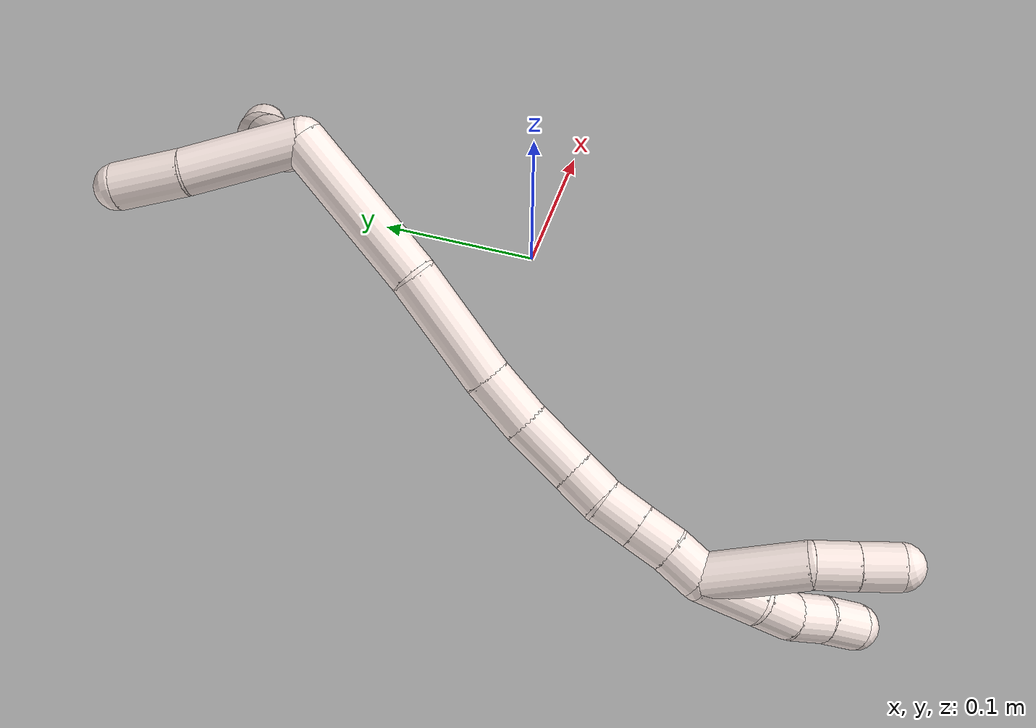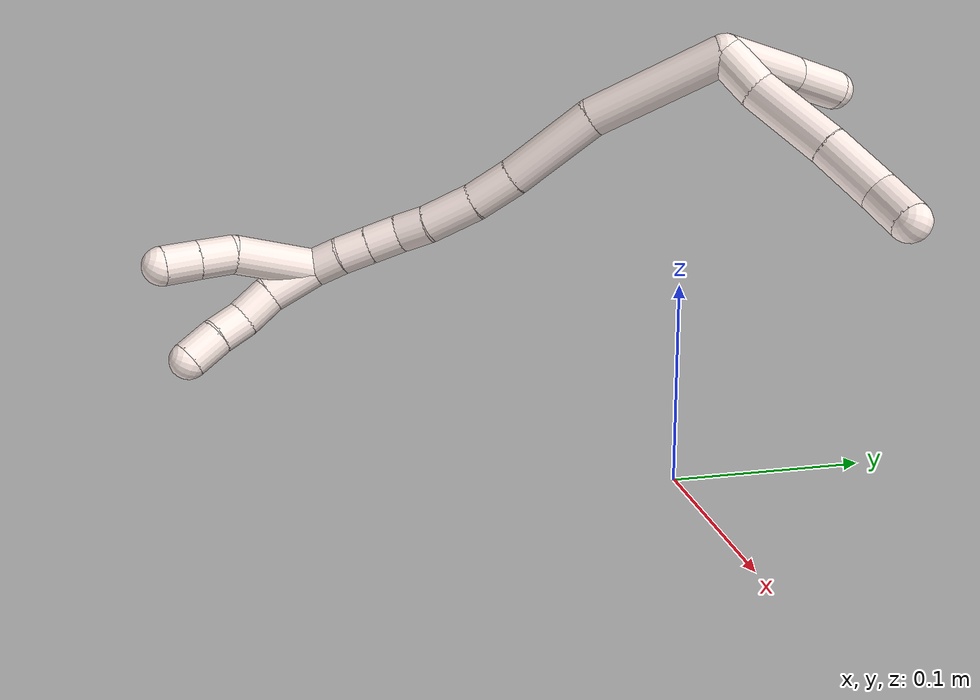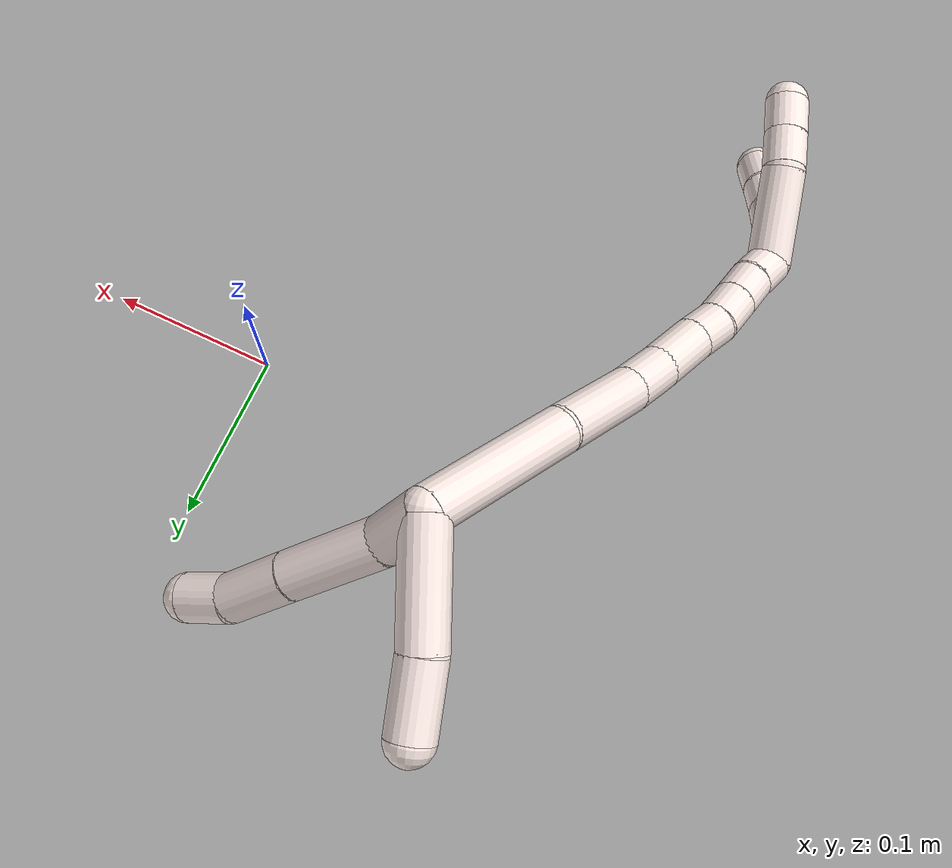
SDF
<sdf version="1.7">
 <world name="default">
  <model name="11">
   <static>0</static>
   <link name="11">
    <collision name="collision-cylinder-e_1_2_8">
     <pose>-0.003775 0.01067 0.00944 -0.846512 -0.259036 0.117214</pose>
     <geometry><cylinder><radius>0.0125</radius><length>0.029477</length></cylinder></geometry>
     <surface>
      <friction><ode><mu>1.16</mu><mu2>1.16</mu2><slip1>0</slip1><slip2>0</slip2></ode></friction>
      <contact><ode><kp>1e+06</kp><kd>1</kd><max_vel>0</max_vel><min_depth>0.001</min_depth></ode></contact>
     </surface>
    </collision>
    <visual name="visual-cylinder-e_1_2_8">
     <pose>-0.003775 0.01067 0.00944 -0.846512 -0.259036 0.117214</pose>
     <geometry><cylinder><radius>0.0125</radius><length>0.029477</length></cylinder></geometry>
     <material><ambient>1 0.933333 0.909804 1</ambient></material>
    </visual>
    <collision name="collision-cylinder-e_2_8_9">
     <pose>-0.010121 0.044797 0.032765 -1.03632 -0.094026 0.053633</pose>
     <geometry><cylinder><radius>0.0125</radius><length>0.054758</length></cylinder></geometry>
     <surface>
      <friction><ode><mu>1.16</mu><mu2>1.16</mu2><slip1>0</slip1><slip2>0</slip2></ode></friction>
      <contact><ode><kp>1e+06</kp><kd>1</kd><max_vel>0</max_vel><min_depth>0.001</min_depth></ode></contact>
     </surface>
    </collision>
    <visual name="visual-cylinder-e_2_8_9">
     <pose>-0.010121 0.044797 0.032765 -1.03632 -0.094026 0.053633</pose>
     <geometry><cylinder><radius>0.0125</radius><length>0.054758</length></cylinder></geometry>
     <material><ambient>1 0.933333 0.909804 1</ambient></material>
    </visual>
    <collision name="collision-cylinder-e_3_9_10">
     <pose>-0.015718 0.085022 0.056685 -1.03148 -0.153634 0.087214</pose>
     <geometry><cylinder><radius>0.0125</radius><length>0.03955</length></cylinder></geometry>
     <surface>
      <friction><ode><mu>1.16</mu><mu2>1.16</mu2><slip1>0</slip1><slip2>0</slip2></ode></friction>
      <contact><ode><kp>1e+06</kp><kd>1</kd><max_vel>0</max_vel><min_depth>0.001</min_depth></ode></contact>
     </surface>
    </collision>
    <visual name="visual-cylinder-e_3_9_10">
     <pose>-0.015718 0.085022 0.056685 -1.03148 -0.153634 0.087214</pose>
     <geometry><cylinder><radius>0.0125</radius><length>0.03955</length></cylinder></geometry>
     <material><ambient>1 0.933333 0.909804 1</ambient></material>
    </visual>
    <collision name="collision-cylinder-e_4_10_6">
     <pose>-0.020357 0.114433 0.069784 -1.33313 -0.12336 0.097092</pose>
     <geometry><cylinder><radius>0.0125</radius><length>0.026216</length></cylinder></geometry>
     <surface>
      <friction><ode><mu>1.16</mu><mu2>1.16</mu2><slip1>0</slip1><slip2>0</slip2></ode></friction>
      <contact><ode><kp>1e+06</kp><kd>1</kd><max_vel>0</max_vel><min_depth>0.001</min_depth></ode></contact>
     </surface>
    </collision>
    <visual name="visual-cylinder-e_4_10_6">
     <pose>-0.020357 0.114433 0.069784 -1.33313 -0.12336 0.097092</pose>
     <geometry><cylinder><radius>0.0125</radius><length>0.026216</length></cylinder></geometry>
     <material><ambient>1 0.933333 0.909804 1</ambient></material>
    </visual>
    <collision name="collision-cylinder-e_1_2_11">
     <pose>0.00325 -0.005432 0.030406 0.176792 0.104827 0.009299</pose>
     <geometry><cylinder><radius>0.0125</radius><length>0.062115</length></cylinder></geometry>
     <surface>
      <friction><ode><mu>1.16</mu><mu2>1.16</mu2><slip1>0</slip1><slip2>0</slip2></ode></friction>
      <contact><ode><kp>1e+06</kp><kd>1</kd><max_vel>0</max_vel><min_depth>0.001</min_depth></ode></contact>
     </surface>
    </collision>
    <visual name="visual-cylinder-e_1_2_11">
     <pose>0.00325 -0.005432 0.030406 0.176792 0.104827 0.009299</pose>
     <geometry><cylinder><radius>0.0125</radius><length>0.062115</length></cylinder></geometry>
     <material><ambient>1 0.933333 0.909804 1</ambient></material>
    </visual>
    <collision name="collision-cylinder-e_2_11_5">
     <pose>0.008648 -0.011725 0.079612 0.045724 0.113664 0.002602</pose>
     <geometry><cylinder><radius>0.0125</radius><length>0.037885</length></cylinder></geometry>
     <surface>
      <friction><ode><mu>1.16</mu><mu2>1.16</mu2><slip1>0</slip1><slip2>0</slip2></ode></friction>
      <contact><ode><kp>1e+06</kp><kd>1</kd><max_vel>0</max_vel><min_depth>0.001</min_depth></ode></contact>
     </surface>
    </collision>
    <visual name="visual-cylinder-e_2_11_5">
     <pose>0.008648 -0.011725 0.079612 0.045724 0.113664 0.002602</pose>
     <geometry><cylinder><radius>0.0125</radius><length>0.037885</length></cylinder></geometry>
     <material><ambient>1 0.933333 0.909804 1</ambient></material>
    </visual>
    <collision name="collision-cylinder-e_1_2_12">
     <pose>-0.037084 -0.01619 -0.018744 2.42918 -0.981945 -1.9256</pose>
     <geometry><cylinder><radius>0.0125</radius><length>0.08919</length></cylinder></geometry>
     <surface>
      <friction><ode><mu>1.16</mu><mu2>1.16</mu2><slip1>0</slip1><slip2>0</slip2></ode></friction>
      <contact><ode><kp>1e+06</kp><kd>1</kd><max_vel>0</max_vel><min_depth>0.001</min_depth></ode></contact>
     </surface>
    </collision>
    <visual name="visual-cylinder-e_1_2_12">
     <pose>-0.037084 -0.01619 -0.018744 2.42918 -0.981945 -1.9256</pose>
     <geometry><cylinder><radius>0.0125</radius><length>0.08919</length></cylinder></geometry>
     <material><ambient>1 0.933333 0.909804 1</ambient></material>
    </visual>
    <collision name="collision-cylinder-e_2_12_13">
     <pose>-0.103249 -0.039316 -0.047103 2.51665 -1.18371 -2.24565</pose>
     <geometry><cylinder><radius>0.0125</radius><length>0.062808</length></cylinder></geometry>
     <surface>
      <friction><ode><mu>1.16</mu><mu2>1.16</mu2><slip1>0</slip1><slip2>0</slip2></ode></friction>
      <contact><ode><kp>1e+06</kp><kd>1</kd><max_vel>0</max_vel><min_depth>0.001</min_depth></ode></contact>
     </surface>
    </collision>
    <visual name="visual-cylinder-e_2_12_13">
     <pose>-0.103249 -0.039316 -0.047103 2.51665 -1.18371 -2.24565</pose>
     <geometry><cylinder><radius>0.0125</radius><length>0.062808</length></cylinder></geometry>
     <material><ambient>1 0.933333 0.909804 1</ambient></material>
    </visual>
    <collision name="collision-cylinder-e_3_13_14">
     <pose>-0.145971 -0.049743 -0.062636 2.60863 -1.10414 -2.30727</pose>
     <geometry><cylinder><radius>0.0125</radius><length>0.030547</length></cylinder></geometry>
     <surface>
      <friction><ode><mu>1.16</mu><mu2>1.16</mu2><slip1>0</slip1><slip2>0</slip2></ode></friction>
      <contact><ode><kp>1e+06</kp><kd>1</kd><max_vel>0</max_vel><min_depth>0.001</min_depth></ode></contact>
     </surface>
    </collision>
    <visual name="visual-cylinder-e_3_13_14">
     <pose>-0.145971 -0.049743 -0.062636 2.60863 -1.10414 -2.30727</pose>
     <geometry><cylinder><radius>0.0125</radius><length>0.030547</length></cylinder></geometry>
     <material><ambient>1 0.933333 0.909804 1</ambient></material>
    </visual>
    <collision name="collision-cylinder-e_4_14_15">
     <pose>-0.173889 -0.05795 -0.076812 2.6227 -0.983227 -2.22119</pose>
     <geometry><cylinder><radius>0.0125</radius><length>0.03431</length></cylinder></geometry>
     <surface>
      <friction><ode><mu>1.16</mu><mu2>1.16</mu2><slip1>0</slip1><slip2>0</slip2></ode></friction>
      <contact><ode><kp>1e+06</kp><kd>1</kd><max_vel>0</max_vel><min_depth>0.001</min_depth></ode></contact>
     </surface>
    </collision>
    <visual name="visual-cylinder-e_4_14_15">
     <pose>-0.173889 -0.05795 -0.076812 2.6227 -0.983227 -2.22119</pose>
     <geometry><cylinder><radius>0.0125</radius><length>0.03431</length></cylinder></geometry>
     <material><ambient>1 0.933333 0.909804 1</ambient></material>
    </visual>
    <collision name="collision-cylinder-e_5_15_16">
     <pose>-0.196011 -0.066638 -0.090345 2.49618 -0.871108 -1.89543</pose>
     <geometry><cylinder><radius>0.0125</radius><length>0.020504</length></cylinder></geometry>
     <surface>
      <friction><ode><mu>1.16</mu><mu2>1.16</mu2><slip1>0</slip1><slip2>0</slip2></ode></friction>
      <contact><ode><kp>1e+06</kp><kd>1</kd><max_vel>0</max_vel><min_depth>0.001</min_depth></ode></contact>
     </surface>
    </collision>
    <visual name="visual-cylinder-e_5_15_16">
     <pose>-0.196011 -0.066638 -0.090345 2.49618 -0.871108 -1.89543</pose>
     <geometry><cylinder><radius>0.0125</radius><length>0.020504</length></cylinder></geometry>
     <material><ambient>1 0.933333 0.909804 1</ambient></material>
    </visual>
    <collision name="collision-cylinder-e_6_16_17">
     <pose>-0.21204 -0.072918 -0.102153 2.80187 -0.868323 -2.433</pose>
     <geometry><cylinder><radius>0.0125</radius><length>0.021451</length></cylinder></geometry>
     <surface>
      <friction><ode><mu>1.16</mu><mu2>1.16</mu2><slip1>0</slip1><slip2>0</slip2></ode></friction>
      <contact><ode><kp>1e+06</kp><kd>1</kd><max_vel>0</max_vel><min_depth>0.001</min_depth></ode></contact>
     </surface>
    </collision>
    <visual name="visual-cylinder-e_6_16_17">
     <pose>-0.21204 -0.072918 -0.102153 2.80187 -0.868323 -2.433</pose>
     <geometry><cylinder><radius>0.0125</radius><length>0.021451</length></cylinder></geometry>
     <material><ambient>1 0.933333 0.909804 1</ambient></material>
    </visual>
    <collision name="collision-cylinder-e_7_17_18">
     <pose>-0.227938 -0.077316 -0.114965 2.82043 -0.861673 -2.46396</pose>
     <geometry><cylinder><radius>0.0125</radius><length>0.020323</length></cylinder></geometry>
     <surface>
      <friction><ode><mu>1.16</mu><mu2>1.16</mu2><slip1>0</slip1><slip2>0</slip2></ode></friction>
      <contact><ode><kp>1e+06</kp><kd>1</kd><max_vel>0</max_vel><min_depth>0.001</min_depth></ode></contact>
     </surface>
    </collision>
    <visual name="visual-cylinder-e_7_17_18">
     <pose>-0.227938 -0.077316 -0.114965 2.82043 -0.861673 -2.46396</pose>
     <geometry><cylinder><radius>0.0125</radius><length>0.020323</length></cylinder></geometry>
     <material><ambient>1 0.933333 0.909804 1</ambient></material>
    </visual>
    <collision name="collision-cylinder-e_8_18_1">
     <pose>-0.244142 -0.082028 -0.126707 2.69395 -0.950984 -2.30905</pose>
     <geometry><cylinder><radius>0.0125</radius><length>0.020866</length></cylinder></geometry>
     <surface>
      <friction><ode><mu>1.16</mu><mu2>1.16</mu2><slip1>0</slip1><slip2>0</slip2></ode></friction>
      <contact><ode><kp>1e+06</kp><kd>1</kd><max_vel>0</max_vel><min_depth>0.001</min_depth></ode></contact>
     </surface>
    </collision>
    <visual name="visual-cylinder-e_8_18_1">
     <pose>-0.244142 -0.082028 -0.126707 2.69395 -0.950984 -2.30905</pose>
     <geometry><cylinder><radius>0.0125</radius><length>0.020866</length></cylinder></geometry>
     <material><ambient>1 0.933333 0.909804 1</ambient></material>
    </visual>
    <collision name="collision-cylinder-e_1_1_19">
     <pose>-0.265371 -0.08225 -0.142808 -2.91957 -0.86268 2.66635</pose>
     <geometry><cylinder><radius>0.0125</radius><length>0.033535</length></cylinder></geometry>
     <surface>
      <friction><ode><mu>1.16</mu><mu2>1.16</mu2><slip1>0</slip1><slip2>0</slip2></ode></friction>
      <contact><ode><kp>1e+06</kp><kd>1</kd><max_vel>0</max_vel><min_depth>0.001</min_depth></ode></contact>
     </surface>
    </collision>
    <visual name="visual-cylinder-e_1_1_19">
     <pose>-0.265371 -0.08225 -0.142808 -2.91957 -0.86268 2.66635</pose>
     <geometry><cylinder><radius>0.0125</radius><length>0.033535</length></cylinder></geometry>
     <material><ambient>1 0.933333 0.909804 1</ambient></material>
    </visual>
    <collision name="collision-cylinder-e_2_19_20">
     <pose>-0.287493 -0.076178 -0.159191 -2.57305 -0.942555 2.10034</pose>
     <geometry><cylinder><radius>0.0125</radius><length>0.0232</length></cylinder></geometry>
     <surface>
      <friction><ode><mu>1.16</mu><mu2>1.16</mu2><slip1>0</slip1><slip2>0</slip2></ode></friction>
      <contact><ode><kp>1e+06</kp><kd>1</kd><max_vel>0</max_vel><min_depth>0.001</min_depth></ode></contact>
     </surface>
    </collision>
    <visual name="visual-cylinder-e_2_19_20">
     <pose>-0.287493 -0.076178 -0.159191 -2.57305 -0.942555 2.10034</pose>
     <geometry><cylinder><radius>0.0125</radius><length>0.0232</length></cylinder></geometry>
     <material><ambient>1 0.933333 0.909804 1</ambient></material>
    </visual>
    <collision name="collision-cylinder-e_3_20_21">
     <pose>-0.303237 -0.068337 -0.17173 -2.5911 -0.673377 1.78377</pose>
     <geometry><cylinder><radius>0.0125</radius><length>0.020395</length></cylinder></geometry>
     <surface>
      <friction><ode><mu>1.16</mu><mu2>1.16</mu2><slip1>0</slip1><slip2>0</slip2></ode></friction>
      <contact><ode><kp>1e+06</kp><kd>1</kd><max_vel>0</max_vel><min_depth>0.001</min_depth></ode></contact>
     </surface>
    </collision>
    <visual name="visual-cylinder-e_3_20_21">
     <pose>-0.303237 -0.068337 -0.17173 -2.5911 -0.673377 1.78377</pose>
     <geometry><cylinder><radius>0.0125</radius><length>0.020395</length></cylinder></geometry>
     <material><ambient>1 0.933333 0.909804 1</ambient></material>
    </visual>
    <collision name="collision-cylinder-e_4_21_4">
     <pose>-0.317746 -0.05951 -0.185055 -2.52214 -0.793256 1.83666</pose>
     <geometry><cylinder><radius>0.0125</radius><length>0.022869</length></cylinder></geometry>
     <surface>
      <friction><ode><mu>1.16</mu><mu2>1.16</mu2><slip1>0</slip1><slip2>0</slip2></ode></friction>
      <contact><ode><kp>1e+06</kp><kd>1</kd><max_vel>0</max_vel><min_depth>0.001</min_depth></ode></contact>
     </surface>
    </collision>
    <visual name="visual-cylinder-e_4_21_4">
     <pose>-0.317746 -0.05951 -0.185055 -2.52214 -0.793256 1.83666</pose>
     <geometry><cylinder><radius>0.0125</radius><length>0.022869</length></cylinder></geometry>
     <material><ambient>1 0.933333 0.909804 1</ambient></material>
    </visual>
    <collision name="collision-cylinder-e_1_1_22">
     <pose>-0.256252 -0.083981 -0.15931 -3.1169 -0.132466 2.77346</pose>
     <geometry><cylinder><radius>0.0125</radius><length>0.054777</length></cylinder></geometry>
     <surface>
      <friction><ode><mu>1.16</mu><mu2>1.16</mu2><slip1>0</slip1><slip2>0</slip2></ode></friction>
      <contact><ode><kp>1e+06</kp><kd>1</kd><max_vel>0</max_vel><min_depth>0.001</min_depth></ode></contact>
     </surface>
    </collision>
    <visual name="visual-cylinder-e_1_1_22">
     <pose>-0.256252 -0.083981 -0.15931 -3.1169 -0.132466 2.77346</pose>
     <geometry><cylinder><radius>0.0125</radius><length>0.054777</length></cylinder></geometry>
     <material><ambient>1 0.933333 0.909804 1</ambient></material>
    </visual>
    <collision name="collision-cylinder-e_2_22_23">
     <pose>-0.264553 -0.081423 -0.196747 -2.96032 -0.420652 2.33663</pose>
     <geometry><cylinder><radius>0.0125</radius><length>0.022937</length></cylinder></geometry>
     <surface>
      <friction><ode><mu>1.16</mu><mu2>1.16</mu2><slip1>0</slip1><slip2>0</slip2></ode></friction>
      <contact><ode><kp>1e+06</kp><kd>1</kd><max_vel>0</max_vel><min_depth>0.001</min_depth></ode></contact>
     </surface>
    </collision>
    <visual name="visual-cylinder-e_2_22_23">
     <pose>-0.264553 -0.081423 -0.196747 -2.96032 -0.420652 2.33663</pose>
     <geometry><cylinder><radius>0.0125</radius><length>0.022937</length></cylinder></geometry>
     <material><ambient>1 0.933333 0.909804 1</ambient></material>
    </visual>
    <collision name="collision-cylinder-e_3_23_3">
     <pose>-0.273735 -0.077465 -0.217026 -2.93702 -0.415651 2.23558</pose>
     <geometry><cylinder><radius>0.0125</radius><length>0.022286</length></cylinder></geometry>
     <surface>
      <friction><ode><mu>1.16</mu><mu2>1.16</mu2><slip1>0</slip1><slip2>0</slip2></ode></friction>
      <contact><ode><kp>1e+06</kp><kd>1</kd><max_vel>0</max_vel><min_depth>0.001</min_depth></ode></contact>
     </surface>
    </collision>
    <visual name="visual-cylinder-e_3_23_3">
     <pose>-0.273735 -0.077465 -0.217026 -2.93702 -0.415651 2.23558</pose>
     <geometry><cylinder><radius>0.0125</radius><length>0.022286</length></cylinder></geometry>
     <material><ambient>1 0.933333 0.909804 1</ambient></material>
    </visual>
    <collision name="collision-sphere-3">
     <pose>-0.278235 -0.075394 -0.227008 0 -0 0</pose>
     <geometry><sphere><radius>0.0125</radius></sphere></geometry>
     <surface>
      <friction><ode><mu>1.16</mu><mu2>1.16</mu2><slip1>0</slip1><slip2>0</slip2></ode></friction>
      <contact><ode><kp>1e+06</kp><kd>1</kd><max_vel>0</max_vel><min_depth>0.001</min_depth></ode></contact>
     </surface>
    </collision>
    <visual name="visual-sphere-3">
     <pose>-0.278235 -0.075394 -0.227008 0 -0 0</pose>
     <geometry><sphere><radius>0.0125</radius></sphere></geometry>
     <material><ambient>1 0.933333 0.909804 1</ambient></material>
    </visual>
    <collision name="collision-sphere-23">
     <pose>-0.269236 -0.079536 -0.207044 0 -0 0</pose>
     <geometry><sphere><radius>0.0125</radius></sphere></geometry>
     <surface>
      <friction><ode><mu>1.16</mu><mu2>1.16</mu2><slip1>0</slip1><slip2>0</slip2></ode></friction>
      <contact><ode><kp>1e+06</kp><kd>1</kd><max_vel>0</max_vel><min_depth>0.001</min_depth></ode></contact>
     </surface>
    </collision>
    <visual name="visual-sphere-23">
     <pose>-0.269236 -0.079536 -0.207044 0 -0 0</pose>
     <geometry><sphere><radius>0.0125</radius></sphere></geometry>
     <material><ambient>1 0.933333 0.909804 1</ambient></material>
    </visual>
    <collision name="collision-sphere-22">
     <pose>-0.259869 -0.083311 -0.18645 0 -0 0</pose>
     <geometry><sphere><radius>0.0125</radius></sphere></geometry>
     <surface>
      <friction><ode><mu>1.16</mu><mu2>1.16</mu2><slip1>0</slip1><slip2>0</slip2></ode></friction>
      <contact><ode><kp>1e+06</kp><kd>1</kd><max_vel>0</max_vel><min_depth>0.001</min_depth></ode></contact>
     </surface>
    </collision>
    <visual name="visual-sphere-22">
     <pose>-0.259869 -0.083311 -0.18645 0 -0 0</pose>
     <geometry><sphere><radius>0.0125</radius></sphere></geometry>
     <material><ambient>1 0.933333 0.909804 1</ambient></material>
    </visual>
    <collision name="collision-sphere-4">
     <pose>-0.325894 -0.054852 -0.191587 0 -0 0</pose>
     <geometry><sphere><radius>0.0125</radius></sphere></geometry>
     <surface>
      <friction><ode><mu>1.16</mu><mu2>1.16</mu2><slip1>0</slip1><slip2>0</slip2></ode></friction>
      <contact><ode><kp>1e+06</kp><kd>1</kd><max_vel>0</max_vel><min_depth>0.001</min_depth></ode></contact>
     </surface>
    </collision>
    <visual name="visual-sphere-4">
     <pose>-0.325894 -0.054852 -0.191587 0 -0 0</pose>
     <geometry><sphere><radius>0.0125</radius></sphere></geometry>
     <material><ambient>1 0.933333 0.909804 1</ambient></material>
    </visual>
    <collision name="collision-sphere-21">
     <pose>-0.309597 -0.064167 -0.178524 0 -0 0</pose>
     <geometry><sphere><radius>0.0125</radius></sphere></geometry>
     <surface>
      <friction><ode><mu>1.16</mu><mu2>1.16</mu2><slip1>0</slip1><slip2>0</slip2></ode></friction>
      <contact><ode><kp>1e+06</kp><kd>1</kd><max_vel>0</max_vel><min_depth>0.001</min_depth></ode></contact>
     </surface>
    </collision>
    <visual name="visual-sphere-21">
     <pose>-0.309597 -0.064167 -0.178524 0 -0 0</pose>
     <geometry><sphere><radius>0.0125</radius></sphere></geometry>
     <material><ambient>1 0.933333 0.909804 1</ambient></material>
    </visual>
    <collision name="collision-sphere-20">
     <pose>-0.296878 -0.072507 -0.164936 0 -0 0</pose>
     <geometry><sphere><radius>0.0125</radius></sphere></geometry>
     <surface>
      <friction><ode><mu>1.16</mu><mu2>1.16</mu2><slip1>0</slip1><slip2>0</slip2></ode></friction>
      <contact><ode><kp>1e+06</kp><kd>1</kd><max_vel>0</max_vel><min_depth>0.001</min_depth></ode></contact>
     </surface>
    </collision>
    <visual name="visual-sphere-20">
     <pose>-0.296878 -0.072507 -0.164936 0 -0 0</pose>
     <geometry><sphere><radius>0.0125</radius></sphere></geometry>
     <material><ambient>1 0.933333 0.909804 1</ambient></material>
    </visual>
    <collision name="collision-sphere-11">
     <pose>0.006499 -0.010864 0.060811 0 -0 0</pose>
     <geometry><sphere><radius>0.0125</radius></sphere></geometry>
     <surface>
      <friction><ode><mu>1.16</mu><mu2>1.16</mu2><slip1>0</slip1><slip2>0</slip2></ode></friction>
      <contact><ode><kp>1e+06</kp><kd>1</kd><max_vel>0</max_vel><min_depth>0.001</min_depth></ode></contact>
     </surface>
    </collision>
    <visual name="visual-sphere-11">
     <pose>0.006499 -0.010864 0.060811 0 -0 0</pose>
     <geometry><sphere><radius>0.0125</radius></sphere></geometry>
     <material><ambient>1 0.933333 0.909804 1</ambient></material>
    </visual>
    <collision name="collision-sphere-6">
     <pose>-0.02197 0.127075 0.072846 0 -0 0</pose>
     <geometry><sphere><radius>0.0125</radius></sphere></geometry>
     <surface>
      <friction><ode><mu>1.16</mu><mu2>1.16</mu2><slip1>0</slip1><slip2>0</slip2></ode></friction>
      <contact><ode><kp>1e+06</kp><kd>1</kd><max_vel>0</max_vel><min_depth>0.001</min_depth></ode></contact>
     </surface>
    </collision>
    <visual name="visual-sphere-6">
     <pose>-0.02197 0.127075 0.072846 0 -0 0</pose>
     <geometry><sphere><radius>0.0125</radius></sphere></geometry>
     <material><ambient>1 0.933333 0.909804 1</ambient></material>
    </visual>
    <collision name="collision-sphere-10">
     <pose>-0.018744 0.10179 0.066721 0 -0 0</pose>
     <geometry><sphere><radius>0.0125</radius></sphere></geometry>
     <surface>
      <friction><ode><mu>1.16</mu><mu2>1.16</mu2><slip1>0</slip1><slip2>0</slip2></ode></friction>
      <contact><ode><kp>1e+06</kp><kd>1</kd><max_vel>0</max_vel><min_depth>0.001</min_depth></ode></contact>
     </surface>
    </collision>
    <visual name="visual-sphere-10">
     <pose>-0.018744 0.10179 0.066721 0 -0 0</pose>
     <geometry><sphere><radius>0.0125</radius></sphere></geometry>
     <material><ambient>1 0.933333 0.909804 1</ambient></material>
    </visual>
    <collision name="collision-sphere-9">
     <pose>-0.012692 0.068254 0.04665 0 -0 0</pose>
     <geometry><sphere><radius>0.0125</radius></sphere></geometry>
     <surface>
      <friction><ode><mu>1.16</mu><mu2>1.16</mu2><slip1>0</slip1><slip2>0</slip2></ode></friction>
      <contact><ode><kp>1e+06</kp><kd>1</kd><max_vel>0</max_vel><min_depth>0.001</min_depth></ode></contact>
     </surface>
    </collision>
    <visual name="visual-sphere-9">
     <pose>-0.012692 0.068254 0.04665 0 -0 0</pose>
     <geometry><sphere><radius>0.0125</radius></sphere></geometry>
     <material><ambient>1 0.933333 0.909804 1</ambient></material>
    </visual>
    <collision name="collision-sphere-2">
     <geometry><sphere><radius>0.0125</radius></sphere></geometry>
     <surface>
      <friction><ode><mu>1.16</mu><mu2>1.16</mu2><slip1>0</slip1><slip2>0</slip2></ode></friction>
      <contact><ode><kp>1e+06</kp><kd>1</kd><max_vel>0</max_vel><min_depth>0.001</min_depth></ode></contact>
     </surface>
    </collision>
    <visual name="visual-sphere-2">
     <geometry><sphere><radius>0.0125</radius></sphere></geometry>
     <material><ambient>1 0.933333 0.909804 1</ambient></material>
    </visual>
    <collision name="collision-sphere-19">
     <pose>-0.278108 -0.079848 -0.153446 0 -0 0</pose>
     <geometry><sphere><radius>0.0125</radius></sphere></geometry>
     <surface>
      <friction><ode><mu>1.16</mu><mu2>1.16</mu2><slip1>0</slip1><slip2>0</slip2></ode></friction>
      <contact><ode><kp>1e+06</kp><kd>1</kd><max_vel>0</max_vel><min_depth>0.001</min_depth></ode></contact>
     </surface>
    </collision>
    <visual name="visual-sphere-19">
     <pose>-0.278108 -0.079848 -0.153446 0 -0 0</pose>
     <geometry><sphere><radius>0.0125</radius></sphere></geometry>
     <material><ambient>1 0.933333 0.909804 1</ambient></material>
    </visual>
    <collision name="collision-sphere-8">
     <pose>-0.00755 0.021341 0.01888 0 -0 0</pose>
     <geometry><sphere><radius>0.0125</radius></sphere></geometry>
     <surface>
      <friction><ode><mu>1.16</mu><mu2>1.16</mu2><slip1>0</slip1><slip2>0</slip2></ode></friction>
      <contact><ode><kp>1e+06</kp><kd>1</kd><max_vel>0</max_vel><min_depth>0.001</min_depth></ode></contact>
     </surface>
    </collision>
    <visual name="visual-sphere-8">
     <pose>-0.00755 0.021341 0.01888 0 -0 0</pose>
     <geometry><sphere><radius>0.0125</radius></sphere></geometry>
     <material><ambient>1 0.933333 0.909804 1</ambient></material>
    </visual>
    <collision name="collision-sphere-5">
     <pose>0.010796 -0.012585 0.098412 0 -0 0</pose>
     <geometry><sphere><radius>0.0125</radius></sphere></geometry>
     <surface>
      <friction><ode><mu>1.16</mu><mu2>1.16</mu2><slip1>0</slip1><slip2>0</slip2></ode></friction>
      <contact><ode><kp>1e+06</kp><kd>1</kd><max_vel>0</max_vel><min_depth>0.001</min_depth></ode></contact>
     </surface>
    </collision>
    <visual name="visual-sphere-5">
     <pose>0.010796 -0.012585 0.098412 0 -0 0</pose>
     <geometry><sphere><radius>0.0125</radius></sphere></geometry>
     <material><ambient>1 0.933333 0.909804 1</ambient></material>
    </visual>
    <collision name="collision-sphere-12">
     <pose>-0.074169 -0.03238 -0.037489 0 -0 0</pose>
     <geometry><sphere><radius>0.0125</radius></sphere></geometry>
     <surface>
      <friction><ode><mu>1.16</mu><mu2>1.16</mu2><slip1>0</slip1><slip2>0</slip2></ode></friction>
      <contact><ode><kp>1e+06</kp><kd>1</kd><max_vel>0</max_vel><min_depth>0.001</min_depth></ode></contact>
     </surface>
    </collision>
    <visual name="visual-sphere-12">
     <pose>-0.074169 -0.03238 -0.037489 0 -0 0</pose>
     <geometry><sphere><radius>0.0125</radius></sphere></geometry>
     <material><ambient>1 0.933333 0.909804 1</ambient></material>
    </visual>
    <collision name="collision-sphere-13">
     <pose>-0.13233 -0.046251 -0.056717 0 -0 0</pose>
     <geometry><sphere><radius>0.0125</radius></sphere></geometry>
     <surface>
      <friction><ode><mu>1.16</mu><mu2>1.16</mu2><slip1>0</slip1><slip2>0</slip2></ode></friction>
      <contact><ode><kp>1e+06</kp><kd>1</kd><max_vel>0</max_vel><min_depth>0.001</min_depth></ode></contact>
     </surface>
    </collision>
    <visual name="visual-sphere-13">
     <pose>-0.13233 -0.046251 -0.056717 0 -0 0</pose>
     <geometry><sphere><radius>0.0125</radius></sphere></geometry>
     <material><ambient>1 0.933333 0.909804 1</ambient></material>
    </visual>
    <collision name="collision-sphere-14">
     <pose>-0.159611 -0.053234 -0.068554 0 -0 0</pose>
     <geometry><sphere><radius>0.0125</radius></sphere></geometry>
     <surface>
      <friction><ode><mu>1.16</mu><mu2>1.16</mu2><slip1>0</slip1><slip2>0</slip2></ode></friction>
      <contact><ode><kp>1e+06</kp><kd>1</kd><max_vel>0</max_vel><min_depth>0.001</min_depth></ode></contact>
     </surface>
    </collision>
    <visual name="visual-sphere-14">
     <pose>-0.159611 -0.053234 -0.068554 0 -0 0</pose>
     <geometry><sphere><radius>0.0125</radius></sphere></geometry>
     <material><ambient>1 0.933333 0.909804 1</ambient></material>
    </visual>
    <collision name="collision-sphere-15">
     <pose>-0.188167 -0.062666 -0.08507 0 -0 0</pose>
     <geometry><sphere><radius>0.0125</radius></sphere></geometry>
     <surface>
      <friction><ode><mu>1.16</mu><mu2>1.16</mu2><slip1>0</slip1><slip2>0</slip2></ode></friction>
      <contact><ode><kp>1e+06</kp><kd>1</kd><max_vel>0</max_vel><min_depth>0.001</min_depth></ode></contact>
     </surface>
    </collision>
    <visual name="visual-sphere-15">
     <pose>-0.188167 -0.062666 -0.08507 0 -0 0</pose>
     <geometry><sphere><radius>0.0125</radius></sphere></geometry>
     <material><ambient>1 0.933333 0.909804 1</ambient></material>
    </visual>
    <collision name="collision-sphere-16">
     <pose>-0.203854 -0.070609 -0.095619 0 -0 0</pose>
     <geometry><sphere><radius>0.0125</radius></sphere></geometry>
     <surface>
      <friction><ode><mu>1.16</mu><mu2>1.16</mu2><slip1>0</slip1><slip2>0</slip2></ode></friction>
      <contact><ode><kp>1e+06</kp><kd>1</kd><max_vel>0</max_vel><min_depth>0.001</min_depth></ode></contact>
     </surface>
    </collision>
    <visual name="visual-sphere-16">
     <pose>-0.203854 -0.070609 -0.095619 0 -0 0</pose>
     <geometry><sphere><radius>0.0125</radius></sphere></geometry>
     <material><ambient>1 0.933333 0.909804 1</ambient></material>
    </visual>
    <collision name="collision-sphere-17">
     <pose>-0.220227 -0.075228 -0.108687 0 -0 0</pose>
     <geometry><sphere><radius>0.0125</radius></sphere></geometry>
     <surface>
      <friction><ode><mu>1.16</mu><mu2>1.16</mu2><slip1>0</slip1><slip2>0</slip2></ode></friction>
      <contact><ode><kp>1e+06</kp><kd>1</kd><max_vel>0</max_vel><min_depth>0.001</min_depth></ode></contact>
     </surface>
    </collision>
    <visual name="visual-sphere-17">
     <pose>-0.220227 -0.075228 -0.108687 0 -0 0</pose>
     <geometry><sphere><radius>0.0125</radius></sphere></geometry>
     <material><ambient>1 0.933333 0.909804 1</ambient></material>
    </visual>
    <collision name="collision-sphere-18">
     <pose>-0.23565 -0.079405 -0.121243 0 -0 0</pose>
     <geometry><sphere><radius>0.0125</radius></sphere></geometry>
     <surface>
      <friction><ode><mu>1.16</mu><mu2>1.16</mu2><slip1>0</slip1><slip2>0</slip2></ode></friction>
      <contact><ode><kp>1e+06</kp><kd>1</kd><max_vel>0</max_vel><min_depth>0.001</min_depth></ode></contact>
     </surface>
    </collision>
    <visual name="visual-sphere-18">
     <pose>-0.23565 -0.079405 -0.121243 0 -0 0</pose>
     <geometry><sphere><radius>0.0125</radius></sphere></geometry>
     <material><ambient>1 0.933333 0.909804 1</ambient></material>
    </visual>
    <collision name="collision-sphere-1">
     <pose>-0.252634 -0.084651 -0.13217 0 -0 0</pose>
     <geometry><sphere><radius>0.0125</radius></sphere></geometry>
     <surface>
      <friction><ode><mu>1.16</mu><mu2>1.16</mu2><slip1>0</slip1><slip2>0</slip2></ode></friction>
      <contact><ode><kp>1e+06</kp><kd>1</kd><max_vel>0</max_vel><min_depth>0.001</min_depth></ode></contact>
     </surface>
    </collision>
    <visual name="visual-sphere-1">
     <pose>-0.252634 -0.084651 -0.13217 0 -0 0</pose>
     <geometry><sphere><radius>0.0125</radius></sphere></geometry>
     <material><ambient>1 0.933333 0.909804 1</ambient></material>
    </visual>
    <inertial>
     <pose>-0.126705 -0.027681 -0.055263 0 -0 0</pose>
     <mass>0.75</mass>
     <inertia>
      <ixx>-4.6e-05</ixx>
      <ixy>0</ixy>
      <ixz>0</ixz>
      <iyy>0.000125</iyy>
      <iyz>0</iyz>
      <izz>9.6e-05</izz>
     </inertia>
    </inertial>
   </link>
   <pose>-0.14762 0.079352 0.202434 -2.48232 -1.051 1.12577</pose>
  </model>
 </world>
</sdf>
